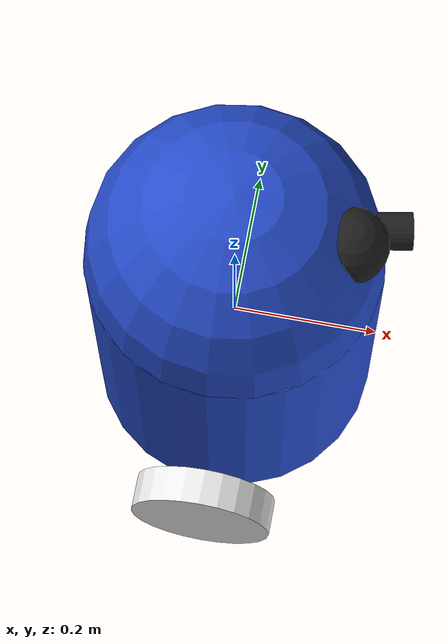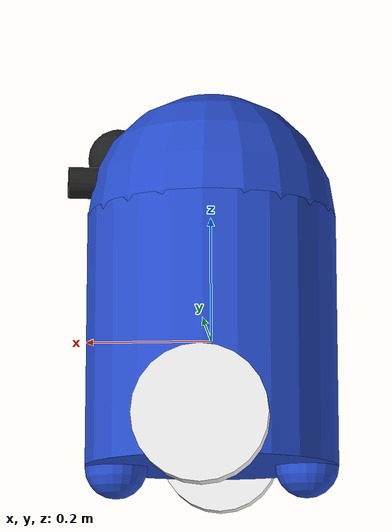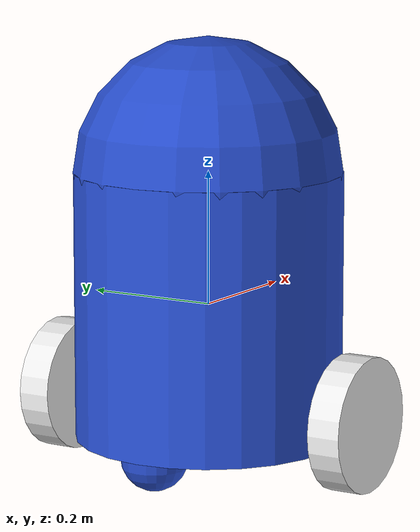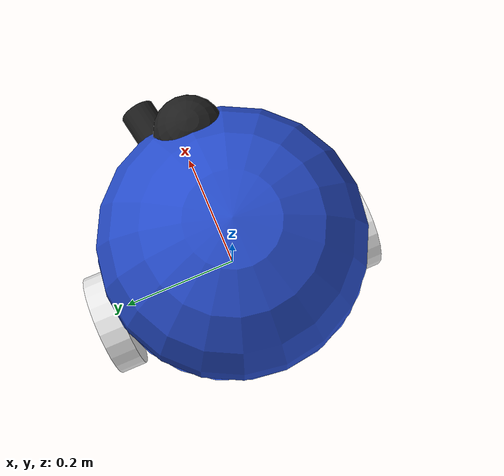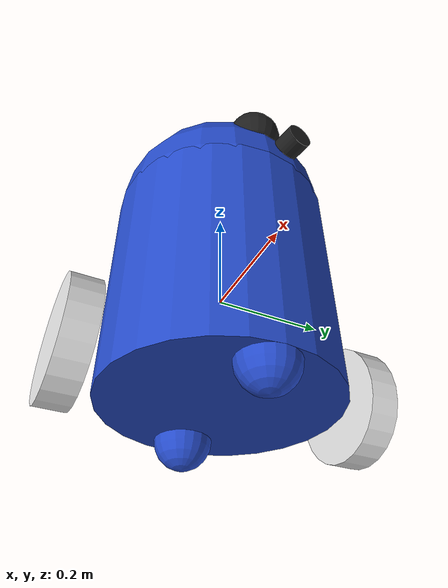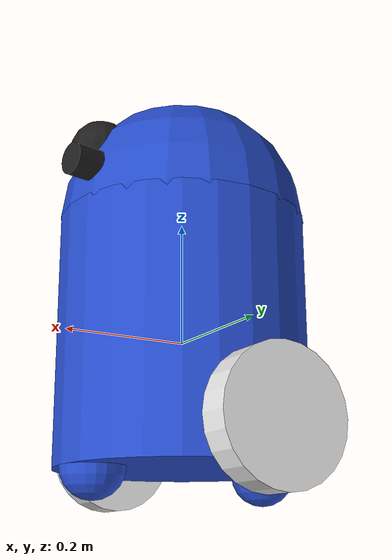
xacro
<?xml version='1.0'?>

<robot name="udacity_bot" xmlns:xacro="http://www.ros.org/wiki/xacro">

  <xacro:include filename="$(find udacity_bot)/urdf/my_bot.gazebo" />

<!-- CHASSIS DEFINITION -->

  <link name="robot_footprint"></link>

  <joint name="robot_footprint_joint" type="fixed">
    <origin xyz="0 0 0" rpy="0 0 0" />
    <parent link="robot_footprint"/>
    <child link="chassis" />
  </joint>

  <link name='chassis'>
    <pose>0 0 0.1 0 0 0</pose>

    <inertial>
      <mass value="15.0"/>
      <origin xyz="0.0 0 0" rpy=" 0 0 0"/>
      <inertia
          ixx="0.1" ixy="0" ixz="0"
          iyy="0.1" iyz="0"
          izz="0.1"
      />
    </inertial>

    <collision name='collision'>
      <origin xyz="0 0 0" rpy=" 0 0 0"/>
      <geometry>
        <cylinder radius="0.2" length="0.4"/>
      </geometry>
    </collision>

    <visual name='chassis_visual'>
      <origin xyz="0 0 0" rpy=" 0 0 0"/>
      <geometry>
        <cylinder radius="0.2" length="0.4"/>
      </geometry>
    </visual>

    <collision name='dome'>
      <origin xyz="0 0 0.2" rpy=" 0 0 0"/>
      <geometry>
        <sphere radius="0.2"/>
      </geometry>
    </collision>

    <visual name='dome_visual'>
      <origin xyz="0 0 0.2" rpy=" 0 0 0"/>
      <geometry>
        <sphere radius="0.2"/>
      </geometry>
    </visual>

    <collision name='back_caster_collision'>
      <origin xyz="-0.15 0 -0.2" rpy=" 0 0 0"/>
      <geometry>
        <sphere radius="0.05"/>
      </geometry>
      <surface>
        <friction>
          <ode>
            <mu>0</mu>
            <mu2>0</mu2>
            <slip1>1.0</slip1>
            <slip2>1.0</slip2>
          </ode>
        </friction>
      </surface>
    </collision>

    <visual name='back_caster_visual'>
      <origin xyz="-0.15 0 -0.2" rpy=" 0 0 0"/>
      <geometry>
        <sphere radius="0.05"/>
      </geometry>
    </visual>

    <collision name='front_caster_collision'>
      <origin xyz="0.15 0 -0.2" rpy=" 0 0 0"/>
      <geometry>
        <sphere radius="0.05"/>
      </geometry>
      <surface>
        <friction>
          <ode>
            <mu>0</mu>
            <mu2>0</mu2>
            <slip1>1.0</slip1>
            <slip2>1.0</slip2>
          </ode>
        </friction>
      </surface>
    </collision>

    <visual name='front_caster_visual'>
      <origin xyz="0.15 0 -0.2" rpy=" 0 0 0"/>
      <geometry>
        <sphere radius="0.05"/>
      </geometry>
    </visual>

  </link>

<!-- wheels start here! -->

  <link name='left_wheel'>
    <inertial>
      <mass value="5.0"/>
      <origin xyz="0 0 0" rpy=" 0 1.5707 1.5707"/>
      <inertia
          ixx="0.1" ixy="0" ixz="0"
          iyy="0.1" iyz="0"
          izz="0.1"
      />
    </inertial>

    <collision name='left_wheel_collision'>
      <origin xyz="0 0 0" rpy=" 0 1.5707 1.5707"/>
      <geometry>
        <cylinder radius=".1" length=".05"/>
      </geometry>
    </collision>

    <visual name='left_wheel_visual'>
      <origin xyz="0 0 0" rpy=" 0 1.5707 1.5707"/>
      <geometry>
        <cylinder radius=".1" length=".05"/>
      </geometry>
    </visual>

  </link>

  <joint type="continuous" name="left_wheel_hinge">
    <origin xyz="0 0.25 -0.15" rpy="0 0 0"/>
    <child link="left_wheel"/>
    <parent link="chassis"/>
    <axis xyz="0 1 0" rpy="0 0 0"/>
    <limit effort="10000" velocity="1000"/>
    <joint_properties damping="1.0" friction="1.0"/>
  </joint>

<!-- RIGHT WHEEL -->

  <joint type="continuous" name="right_wheel_hinge">
    <origin xyz="0 -0.25 -0.15" rpy="0 0 0"/>
    <parent link="chassis"/>
    <child link="right_wheel"/>
    <axis xyz="0 1 0" rpy="0 0 0"/>
    <limit effort="10000" velocity="1000"/>
    <joint_properties damping="1.0" friction="1.0"/>
  </joint>

  <link name="right_wheel">
    <inertial>
      <mass value="5.0"/>
      <origin xyz="0 0 0" rpy=" 0 1.5707 1.5707"/>
      <inertia
          ixx="0.1" ixy="0" ixz="0"
          iyy="0.1" iyz="0"
          izz="0.1"
      />
    </inertial>

    <collision name='right_wheel_collision'>
      <origin xyz="0 0 0" rpy=" 0 1.5707 1.5707"/>
      <geometry>
        <cylinder radius=".1" length=".05"/>
      </geometry>
    </collision>

    <visual name='right_wheel_visual'>
      <origin xyz="0 0 0" rpy=" 0 1.5707 1.5707"/>
      <geometry>
        <cylinder radius=".1" length=".05"/>
      </geometry>
    </visual>
  </link>

<!-- CAMERA DEFINITION -->

  <link name="camera">
    <inertial>
      <mass value="0.1"/>
      <origin xyz="0 0 0" rpy=" 0 0 0"/>
      <inertia
          ixx="1e-6" ixy="0" ixz="0"
          iyy="1e-6" iyz="0"
          izz="1e-6"
      />
    </inertial>

    <collision name='camera_collision'>
      <origin xyz="0 0 0" rpy=" 0 0 0"/>
      <geometry>
        <sphere radius=".05"/>
      </geometry>
    </collision>

    <visual name='camera_visual'>
      <origin xyz="0 0 0" rpy=" 0 0 0"/>
      <geometry>
        <sphere radius=".05"/>
      </geometry>
    </visual>

  </link>

  <joint type="fixed" name="camera_joint">
    <origin xyz="0.15 0 0.3" rpy="0 0 0"/>
    <child link="camera"/>
    <parent link="chassis"/>
  </joint>

<!-- LASER RANGEFINDER DEFINITION -->

  <link name="hokuyo">
    <inertial>
      <mass value="0.1"/>
      <origin xyz="0 0 0" rpy=" 0 0 0"/>
      <inertia
          ixx="1e-6" ixy="0" ixz="0"
          iyy="1e-6" iyz="0"
          izz="1e-6"
      />
    </inertial>

    <collision name='hokuyo_collision'>
      <origin xyz="0 0 0" rpy=" 0 0 0"/>
      <geometry>
        <cylinder radius="0.025" length="0.05"/>
      </geometry>
    </collision>

    <visual name='hokuyo_visual'>
      <origin xyz="0 0 0" rpy=" -0.175 1.57 0"/>
      <geometry>
        <cylinder radius="0.025" length="0.05"/>
      </geometry>
    </visual>
  </link>

  <joint type="fixed" name="hokuyo_joint">
    <origin xyz=".2 0.05 0.25" rpy="0 0 0"/>
    <child link="hokuyo"/>
    <parent link="chassis"/>
  </joint>

</robot>
